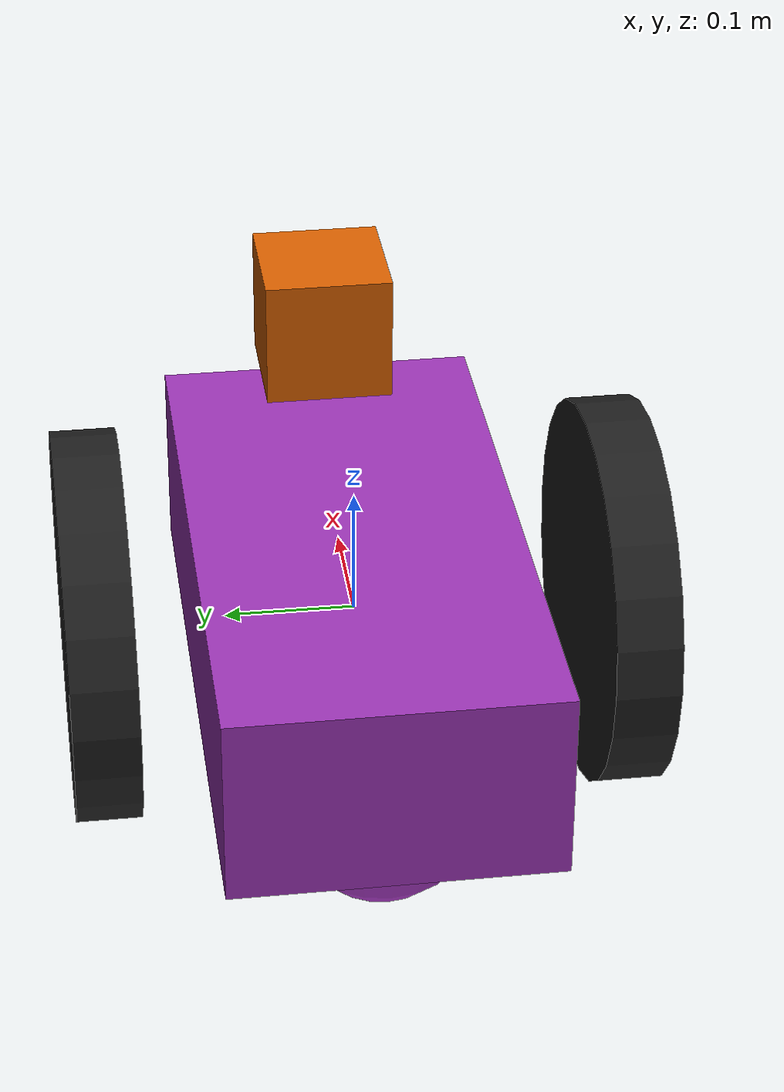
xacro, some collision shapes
<?xml version='1.0'?>

<robot name="my_robot" xmlns:xacro="http://www.ros.org/wiki/xacro">

  <xacro:include filename="$(find my_robot)/urdf/my_robot.gazebo" />

  <link name="robot_footprint"></link>

  <joint name="robot_footprint_joint" type="fixed">
    <origin xyz="0 0 0" rpy="0 0 0" />
    <parent link="robot_footprint"/>
    <child link="chassis" />
  </joint>

  <link name='chassis'>
    <pose>0 0 0.15 0 0 0</pose>

    <inertial>
      <mass value="4.0"/>
      <origin xyz="0.0 0 0" rpy=" 0 0 0"/>
      <inertia
          ixx="0.1" ixy="0" ixz="0"
          iyy="0.1" iyz="0"
          izz="0.1"
      />
    </inertial>

    <collision name='collision'>
      <origin xyz="0 0 0" rpy=" 0 0 0"/>
      <geometry>
        <box size=".5 .25 .15"/>
      </geometry>
    </collision>

    <visual name='chassis_visual'>
      <origin xyz="0 0 0" rpy=" 0 0 0"/>
      <geometry>
        <box size=".5 .25 .15"/>
      </geometry>
    </visual>

    <collision name='back_caster_collision'>
      <origin xyz="-0.15 0 -0.075" rpy=" 0 0 0"/>
      <geometry>
        <sphere radius="0.07499"/>
      </geometry>
    </collision>

    <visual name='back_caster_visual'>
      <origin xyz="-0.15 0 -0.075" rpy=" 0 0 0"/>
      <geometry>
        <sphere radius="0.075"/>
      </geometry>
    </visual>

    <collision name='front_caster_collision'>
      <origin xyz="0.15 0 -0.075" rpy=" 0 0 0"/>
      <geometry>
        <sphere radius="0.07499"/>
      </geometry>
    </collision>

    <visual name='front_caster_visual'>
      <origin xyz="0.15 0 -0.075" rpy=" 0 0 0"/>
      <geometry>
        <sphere radius="0.075"/>
      </geometry>
    </visual>

  </link>

  <link name='right_wheel'>
    <visual name='right_wheel_visual'>
      <origin xyz="0 0 0" rpy="0 1.5707 1.5707"/>
      <geometry>
        <cylinder length="0.05" radius="0.15"/>
      </geometry>
    </visual>

    <inertial>
      <mass value="1.5"/>
      <origin xyz="0 0 0" rpy="0 1.5707 1.5707"/>
      <inertia
          ixx="0.1" ixy="0" ixz="0"
          iyy="0.1" iyz="0"
          izz="0.1"
      />
    </inertial>

    <collision name='right_wheel_collision'>
      <origin xyz="0 0 0" rpy="0 1.5707 1.5707"/>
      <geometry>
        <cylinder length="0.05" radius="0.15"/>
      </geometry>
    </collision>
  </link>

  <link name='left_wheel'>
    <visual name='left_wheel_visual'>
      <origin xyz="0 0 0" rpy="0 1.5707 1.5707"/>
      <geometry>
        <cylinder length="0.05" radius="0.15"/>
      </geometry>
    </visual>

    <inertial>
      <mass value="1.5"/>
      <origin xyz="0 0 0" rpy="0 1.5707 1.5707"/>
      <inertia
          ixx="0.1" ixy="0" ixz="0"
          iyy="0.1" iyz="0"
          izz="0.1"
      />
    </inertial>

    <collision name='left_wheel_collision'>
      <origin xyz="0 0 0" rpy="0 1.5707 1.5707"/>
      <geometry>
        <cylinder length="0.05" radius="0.15"/>
      </geometry>
    </collision>
  </link>

  <joint type="continuous" name="left_wheel_hinge">
    <origin xyz="0 0.2 0" rpy="0 0 0"/>
    <child link="left_wheel"/>
    <parent link="chassis"/>
    <axis xyz="0 1 0" rpy="0 0 0"/>
    <limit effort="10000" velocity="1000"/>
    <dynamics damping="1.0" friction="1.0"/>
  </joint>

  <joint type="continuous" name="right_wheel_hinge">
    <origin xyz="0 -0.2 0" rpy="0 0 0"/>
    <child link="right_wheel"/>
    <parent link="chassis"/>
    <axis xyz="0 1 0" rpy="0 0 0"/>
    <limit effort="10000" velocity="1000"/>
    <dynamics damping="1.0" friction="1.0"/>
  </joint>

  <link name='camera'>
    <visual name='camera_visual'>
      <origin xyz="0 0 0" rpy="0 0 0"/>
      <geometry>
        <box size=".05 .05 .05"/>
      </geometry>
    </visual>

    <inertial>
      <mass value="0.1"/>
      <origin xyz="0 0 0" rpy="0 0 0"/>
      <inertia
          ixx="1e-6" ixy="0" ixz="0"
          iyy="1e-6" iyz="0"
          izz="1e-6"
      />
    </inertial>

    <collision name='camera_collision'>
      <origin xyz="0 0 0" rpy="0 0 0"/>
      <geometry>
        <box size=".05 .05 .05"/>
      </geometry>
    </collision>
  </link>

  <joint type="fixed" name="camera_joint">
    <origin xyz="0.25 0 0" rpy="0 0 0"/>
    <child link="camera"/>
    <parent link="chassis"/>
    <axis xyz="0 1 0" rpy="0 0 0"/>
  </joint>

  <link name='hokuyo'>
    <visual name='hokuyo_visual'>
      <origin xyz="0 0 0" rpy="0 0 0"/>
      <geometry>
        <mesh filename="package://my_robot/meshes/hokuyo.dae" scale="1 1 1"/>
      </geometry>
    </visual>

    <inertial>
      <mass value="1e-5"/>
      <origin xyz="0 0 0" rpy="0 0 0"/>
      <inertia
          ixx="1e-6" ixy="0" ixz="0"
          iyy="1e-6" iyz="0"
          izz="1e-6"
      />
    </inertial>

    <collision name='hokuyo_collision'>
      <origin xyz="0 0 0" rpy="0 0 0"/>
      <geometry>
        <box size=".1 .1 .1"/>
      </geometry>
    </collision>
  </link>

  <joint type="fixed" name="hokuyo_joint">
    <origin xyz="0.2 0 0.15" rpy="0 0 0"/>
    <child link="hokuyo"/>
    <parent link="chassis"/>
    <axis xyz="0 1 0" rpy="0 0 0"/>
  </joint>

  <link name="camera_link_optical">
  </link>

  <joint name="camera_optical_joint" type="fixed">
    <origin xyz="0 0 0" rpy="-1.5707 0 -1.5707"/>
    <parent link="camera"/>
    <child link="camera_link_optical"/>
  </joint>

  <gazebo reference="left_wheel">
    <material>Gazebo/Black</material>
  </gazebo>

  <gazebo reference="right_wheel">
    <material>Gazebo/Black</material>
  </gazebo>

  <gazebo reference="chassis">
    <material>Gazebo/Purple</material>
  </gazebo>

  <gazebo reference="camera">
    <material>Gazebo/Blue</material>
  </gazebo>

</robot>
